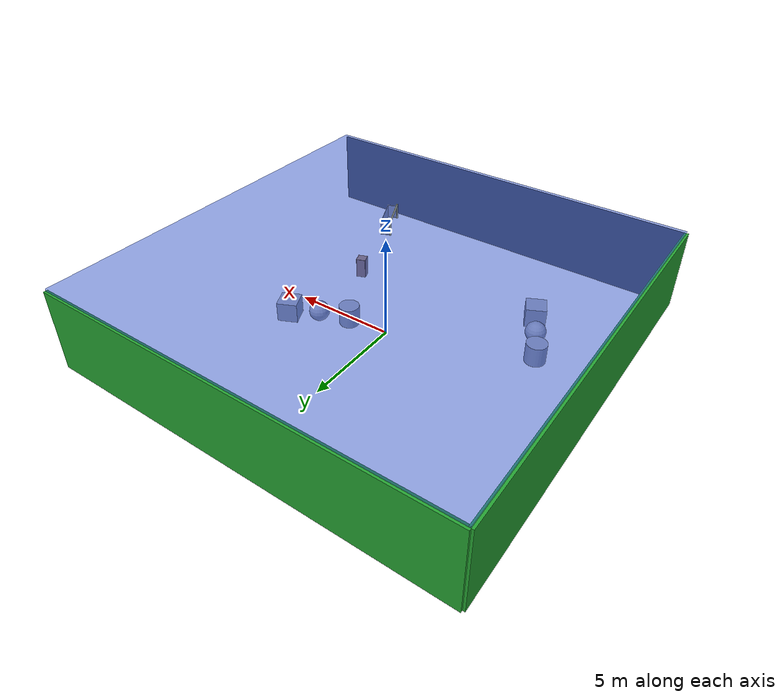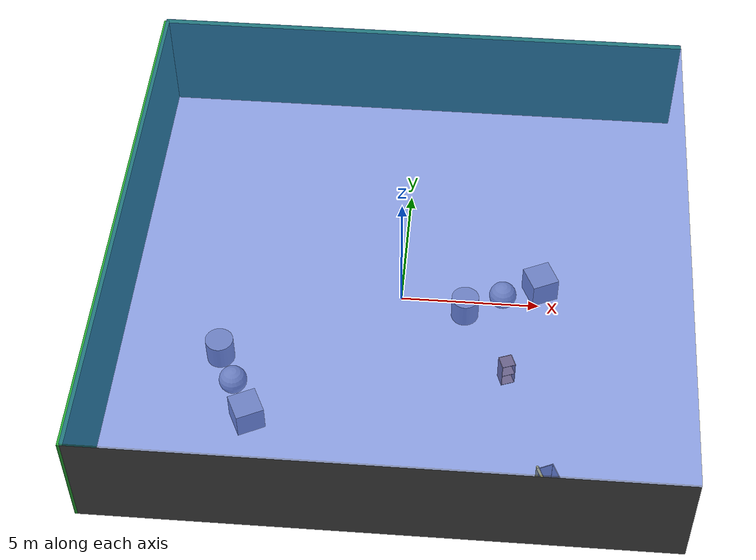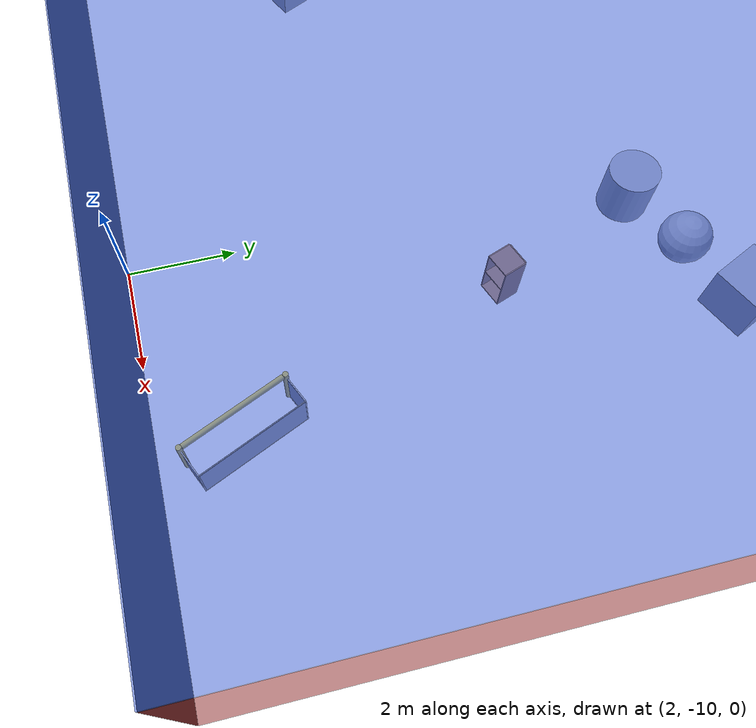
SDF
<sdf version="1.4">
 <world name="default">
  <physics type="ode">
   <max_step_size>0.001</max_step_size>
   <real_time_factor>1</real_time_factor>
   <real_time_update_rate>1000</real_time_update_rate>
   <gravity>0 0 -9.8</gravity>
  </physics>
  <scene><ambient>0.4 0.4 0.4 1</ambient><background>0.7 0.7 0.7 1</background><shadows>1</shadows></scene>
  <model name="Surrounding">
   <static>1</static>
   <link name="Ceiling">
    <collision name="Ceiling_Collision"><geometry><box><size>20 20 0.1</size></box></geometry></collision>
    <visual name="Ceiling_Visual">
     <geometry><box><size>20 20 0.1</size></box></geometry>
     <material>
      <script><uri>file://media/materials/scripts/gazebo.material</uri><name>Gazebo/BlueTransparent</name></script>
     </material>
    </visual>
    <pose>0 0 4.05 0 0 0</pose>
   </link>
   <link name="Wall_South">
    <collision name="Wall_South_Collision">
     <geometry><box><size>20 0 4</size></box></geometry>
     <pose>0 0 2 0 -0 0</pose>
    </collision>
    <visual name="Wall_South_Visual">
     <pose>0 0 2 0 -0 0</pose>
     <geometry><box><size>20 0 4</size></box></geometry>
     <material>
      <script><uri>file://media/materials/scripts/gazebo.material</uri><name>Gazebo/DarkGrey</name></script>
     </material>
    </visual>
    <velocity_decay><linear>0</linear><angular>0</angular></velocity_decay>
    <pose>0 -10 0 0 -0 0</pose>
   </link>
   <link name="Wall_East">
    <collision name="Wall_21_Collision">
     <geometry><box><size>20 0 4</size></box></geometry>
     <pose>0 0 2 0 -0 0</pose>
    </collision>
    <visual name="Wall_21_Visual">
     <pose>0 0 2 0 -0 0</pose>
     <geometry><box><size>20 0 4</size></box></geometry>
     <material>
      <script><uri>file://media/materials/scripts/gazebo.material</uri><name>Gazebo/RedTransparent</name></script>
     </material>
    </visual>
    <velocity_decay><linear>0</linear><angular>0</angular></velocity_decay>
    <pose>10 0 0 0 -0 1.5708</pose>
   </link>
   <link name="Wall_North">
    <collision name="Wall_22_Collision">
     <geometry><box><size>20 0.2 4</size></box></geometry>
     <pose>0 0 2 0 -0 0</pose>
    </collision>
    <visual name="Wall_22_Visual">
     <pose>0 0 2 0 -0 0</pose>
     <geometry><box><size>20 0.2 4</size></box></geometry>
     <material>
      <script><uri>file://media/materials/scripts/gazebo.material</uri><name>Gazebo/Green</name></script>
     </material>
    </visual>
    <velocity_decay><linear>0</linear><angular>0</angular></velocity_decay>
    <pose>0 10 0 0 -0 0</pose>
   </link>
   <link name="Wall_West">
    <collision name="Wall_23_Collision">
     <geometry><box><size>20 0.2 4</size></box></geometry>
     <pose>0 0 2 0 -0 0</pose>
    </collision>
    <visual name="Wall_23_Visual">
     <pose>0 0 2 0 -0 0</pose>
     <geometry><box><size>20 0.2 4</size></box></geometry>
     <material>
      <script><uri>file://media/materials/scripts/gazebo.material</uri><name>Gazebo/Green</name></script>
     </material>
    </visual>
    <velocity_decay><linear>0</linear><angular>0</angular></velocity_decay>
    <pose>-10 0 0 0 0 -1.5708</pose>
   </link>
   <link name="Ground_link">
    <collision name="collision">
     <pose>0 0 .05 0 -0 0</pose>
     <geometry><box><size>20 20 0.1</size></box></geometry>
    </collision>
    <visual name="visual">
     <pose>0 0 .05 0 -0 0</pose>
     <geometry><box><size>20 20 0.1</size></box></geometry>
     <material>
      <script><uri>file://media/materials/scripts/gazebo.material</uri><name>Gazebo/RedTransparent</name></script>
     </material>
    </visual>
   </link>
   <static>1</static>
  </model>
  <spherical_coordinates>
   <surface_model>EARTH_WGS84</surface_model>
   <latitude_deg>0</latitude_deg>
   <longitude_deg>0</longitude_deg>
   <elevation>0</elevation>
   <heading_deg>0</heading_deg>
  </spherical_coordinates>
  <light name="lightball_0" type="diffuse">
   <diffuse>0.8 0.8 0.8 1</diffuse>
   <specular>0.2 0.2 0.2 1</specular>
   <attenuation>
    <range>100</range>
    <constant>0.7</constant>
    <linear>0.01</linear>
    <quadratic>0.001</quadratic>
   </attenuation>
   <direction>-0.5 0.1 -0.9</direction>
   <pose>-3.10347327795 2.76650983973 3.27895108551 0 0 0</pose>
  </light>
  <light name="lightball_1" type="diffuse">
   <diffuse>0.8 0.8 0.8 1</diffuse>
   <specular>0.2 0.2 0.2 1</specular>
   <attenuation>
    <range>100</range>
    <constant>0.7</constant>
    <linear>0.01</linear>
    <quadratic>0.001</quadratic>
   </attenuation>
   <direction>-0.5 0.1 -0.9</direction>
   <pose>4.42525129269 -1.98116404055 3.84549390939 0 0 0</pose>
  </light>
  <light name="lightball_2" type="diffuse">
   <diffuse>0.8 0.8 0.8 1</diffuse>
   <specular>0.2 0.2 0.2 1</specular>
   <attenuation>
    <range>100</range>
    <constant>0.7</constant>
    <linear>0.01</linear>
    <quadratic>0.001</quadratic>
   </attenuation>
   <direction>-0.5 0.1 -0.9</direction>
   <pose>-1.08263502822 -5.50587422909 1.14300539423 0 0 0</pose>
  </light>
  <light name="lightball_3" type="diffuse">
   <diffuse>0.8 0.8 0.8 1</diffuse>
   <specular>0.2 0.2 0.2 1</specular>
   <attenuation>
    <range>100</range>
    <constant>0.7</constant>
    <linear>0.01</linear>
    <quadratic>0.001</quadratic>
   </attenuation>
   <direction>-0.5 0.1 -0.9</direction>
   <pose>1.71915640522 7.25481019983 1.47166536637 0 0 0</pose>
  </light>
  <light name="lightball_4" type="diffuse">
   <diffuse>0.8 0.8 0.8 1</diffuse>
   <specular>0.2 0.2 0.2 1</specular>
   <attenuation>
    <range>100</range>
    <constant>0.7</constant>
    <linear>0.01</linear>
    <quadratic>0.001</quadratic>
   </attenuation>
   <direction>-0.5 0.1 -0.9</direction>
   <pose>3.64144009284 -9.30930374953 2.34480760671 0 0 0</pose>
  </light>
  <light name="lightball_5" type="diffuse">
   <diffuse>0.8 0.8 0.8 1</diffuse>
   <specular>0.2 0.2 0.2 1</specular>
   <attenuation>
    <range>100</range>
    <constant>0.7</constant>
    <linear>0.01</linear>
    <quadratic>0.001</quadratic>
   </attenuation>
   <direction>-0.5 0.1 -0.9</direction>
   <pose>-6.54123422797 1.77660602973 0.913367110695 0 0 0</pose>
  </light>
  <light name="lightball_6" type="diffuse">
   <diffuse>0.8 0.8 0.8 1</diffuse>
   <specular>0.2 0.2 0.2 1</specular>
   <attenuation>
    <range>100</range>
    <constant>0.7</constant>
    <linear>0.01</linear>
    <quadratic>0.001</quadratic>
   </attenuation>
   <direction>-0.5 0.1 -0.9</direction>
   <pose>-1.86813725628 8.40391083828 1.04280490039 0 0 0</pose>
  </light>
  <light name="lightball_7" type="diffuse">
   <diffuse>0.8 0.8 0.8 1</diffuse>
   <specular>0.2 0.2 0.2 1</specular>
   <attenuation>
    <range>100</range>
    <constant>0.7</constant>
    <linear>0.01</linear>
    <quadratic>0.001</quadratic>
   </attenuation>
   <direction>-0.5 0.1 -0.9</direction>
   <pose>8.09868498987 -9.0247550964 3.20197140438 0 0 0</pose>
  </light>
  <include>
   <uri>model://textured_shapes</uri>
   <pose>-5.66833557901 -4.1425348158 0 0 0 0.455212149801</pose>
  </include>
  <include>
   <uri>model://robocup_3Dsim_goal</uri>
   <pose>5.52186312558 -8.54996765926 0 0 0 0.41759902326</pose>
  </include>
  <include><uri>model://cabinet</uri><pose>3.9305016929 -3.37708495535 0 0 0 1.92205981751</pose></include>
  <include>
   <uri>model://textured_shapes</uri>
   <pose>3.68756912178 0.43278859618 0 0 0 2.00428108189</pose>
  </include>
 </world>
</sdf>

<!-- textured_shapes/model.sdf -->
<sdf version="1.6">
  <model name="textured_shapes">
    <pose>0 0 0.5 0 0 0</pose>
    <link name="box">
      <pose>0 -1.5 0 0 0 0</pose>
      <collision name="collision">
        <geometry>
          <box>
            <size>1 1 1</size>
          </box>
        </geometry>
      </collision>
      <visual name="visual">
        <geometry>
          <box>
            <size>1 1 1</size>
          </box>
        </geometry>
        <material>
          <script>
            <uri>model://../model_source/models/textured_shapes/materials/scripts</uri>
            <uri>model://../model_source/models/textured_shapes/materials/textures</uri>
            <name>TexturedShape/Squares</name>
          </script>
        </material>
      </visual>
    </link>
    <link name="sphere">
      <collision name="collision">
        <geometry>
          <sphere>
            <radius>0.5</radius>
          </sphere>
        </geometry>
      </collision>
      <visual name="visual">
        <geometry>
          <sphere>
            <radius>0.5</radius>
          </sphere>
        </geometry>
        <material>
          <script>
            <uri>model://../model_source/models/textured_shapes/materials/scripts</uri>
            <uri>model://../model_source/models/textured_shapes/materials/textures</uri>
            <name>TexturedShape/Squares</name>
          </script>
        </material>
      </visual>
    </link>
    <link name="cylinder">
      <pose>0 1.5 0 0 0 0</pose>
      <collision name="collision">
        <geometry>
          <cylinder>
            <radius>0.5</radius>
            <length>1</length>
          </cylinder>
        </geometry>
      </collision>
      <visual name="visual">
        <geometry>
          <cylinder>
            <radius>0.5</radius>
            <length>1</length>
          </cylinder>
        </geometry>
        <material>
          <script>
            <uri>model://../model_source/models/textured_shapes/materials/scripts</uri>
            <uri>model://../model_source/models/textured_shapes/materials/textures</uri>
            <name>TexturedShape/Squares</name>
          </script>
        </material>
      </visual>
    </link>
  </model>
</sdf>

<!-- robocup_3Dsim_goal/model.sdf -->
<sdf version="1.5">
  <model name="robocup_3d_goal">
    <static>true</static>
    <link name="left_post">
      <pose>0 1.05 0.45 0 0 0</pose>
      <collision name="collision">
        <geometry>
          <cylinder>
            <radius>0.05</radius>
            <length>0.9</length>
          </cylinder>
        </geometry>
      </collision>
      <visual name="visual">
        <geometry>
          <cylinder>
            <radius>0.05</radius>
            <length>0.9</length>
          </cylinder>
        </geometry>
        <material>
          <script>
            <uri>file://media/materials/scripts/gazebo.material</uri>
            <name>Gazebo/ZincYellow</name>
          </script>
        </material>
      </visual>
    </link>
    <link name="left_support_horiz_lower">
      <pose>0.30 1.05 0.01 0 0 0</pose>
      <collision name="collision">
        <geometry>
          <box>
            <size>0.50 0.02 0.02</size>
          </box>
        </geometry>
      </collision>
      <visual name="visual">
        <geometry>
          <box>
            <size>0.50 0.02 0.02</size>
          </box>
        </geometry>
        <material>
          <script>
            <uri>file://media/materials/scripts/gazebo.material</uri>
            <name>Gazebo/White</name>
          </script>
        </material>
      </visual>
    </link>
    <link name="left_support_horiz_upper">
      <pose>0.30 1.05 0.79 0 0 0</pose>
      <collision name="collision">
        <geometry>
          <box>
            <size>0.50 0.02 0.02</size>
          </box>
        </geometry>
      </collision>
      <visual name="visual">
        <geometry>
          <box>
            <size>0.50 0.02 0.02</size>
          </box>
        </geometry>
        <material>
          <script>
            <uri>file://media/materials/scripts/gazebo.material</uri>
            <name>Gazebo/White</name>
          </script>
        </material>
      </visual>
    </link>
    <link name="left_support_vertical">
      <pose>0.56 1.05 0.4 0 1.5708 0</pose>
      <collision name="collision">
        <geometry>
          <box>
            <size>0.80 0.02 0.02</size>
          </box>
        </geometry>
      </collision>
      <visual name="visual">
        <geometry>
          <box>
            <size>0.80 0.02 0.02</size>
          </box>
        </geometry>
        <material>
          <script>
            <uri>file://media/materials/scripts/gazebo.material</uri>
            <name>Gazebo/White</name>
          </script>
        </material>
      </visual>
    </link>
    <link name="right_support_horiz_lower">
      <pose>0.30 -1.05 0.01 0 0 0</pose>
      <collision name="collision">
        <geometry>
          <box>
            <size>0.50 0.02 0.02</size>
          </box>
        </geometry>
      </collision>
      <visual name="visual">
        <geometry>
          <box>
            <size>0.50 0.02 0.02</size>
          </box>
        </geometry>
        <material>
          <script>
            <uri>file://media/materials/scripts/gazebo.material</uri>
            <name>Gazebo/White</name>
          </script>
        </material>
      </visual>
    </link>
    <link name="right_support_horiz_upper">
      <pose>0.30 -1.05 0.79 0 0 0</pose>
      <collision name="collision">
        <geometry>
          <box>
            <size>0.50 0.02 0.02</size>
          </box>
        </geometry>
      </collision>
      <visual name="visual">
        <geometry>
          <box>
            <size>0.50 0.02 0.02</size>
          </box>
        </geometry>
        <material>
          <script>
            <uri>file://media/materials/scripts/gazebo.material</uri>
            <name>Gazebo/White</name>
          </script>
        </material>
      </visual>
    </link>
    <link name="right_support_vertical">
      <pose>0.56 -1.05 0.4 0 1.5708 0</pose>
      <collision name="collision">
        <geometry>
          <box>
            <size>0.80 0.02 0.02</size>
          </box>
        </geometry>
      </collision>
      <visual name="visual">
        <geometry>
          <box>
            <size>0.80 0.02 0.02</size>
          </box>
        </geometry>
        <material>
          <script>
            <uri>file://media/materials/scripts/gazebo.material</uri>
            <name>Gazebo/White</name>
          </script>
        </material>
      </visual>
    </link>
    <link name="center_support_horiz_lower">
      <pose>0.56 0 0.01 0 1.5708 0</pose>
      <collision name="collision">
        <geometry>
          <box>
            <size>0.02 2.08 0.02</size>
          </box>
        </geometry>
      </collision>
      <visual name="visual">
        <geometry>
          <box>
            <size>0.02 2.08 0.02</size>
          </box>
        </geometry>
        <material>
          <script>
            <uri>file://media/materials/scripts/gazebo.material</uri>
            <name>Gazebo/White</name>
          </script>
        </material>
      </visual>
    </link>
    <link name="center_support_horiz_upper">
      <pose>0.56 0 0.79 0 1.5708 0</pose>
      <collision name="collision">
        <geometry>
          <box>
            <size>0.02 2.08 0.02</size>
          </box>
        </geometry>
      </collision>
      <visual name="visual">
        <geometry>
          <box>
            <size>0.02 2.08 0.02</size>
          </box>
        </geometry>
        <material>
          <script>
            <uri>file://media/materials/scripts/gazebo.material</uri>
            <name>Gazebo/White</name>
          </script>
        </material>
      </visual>
    </link>
    <link name="right_post">
      <pose>0 -1.05 0.45 0 0 0</pose>
      <collision name="collision">
        <geometry>
          <cylinder>
            <radius>0.05</radius>
            <length>0.9</length>
          </cylinder>
        </geometry>
      </collision>
      <visual name="visual">
        <geometry>
          <cylinder>
            <radius>0.05</radius>
            <length>0.9</length>
          </cylinder>
        </geometry>
        <material>
          <script>
            <uri>file://media/materials/scripts/gazebo.material</uri>
            <name>Gazebo/ZincYellow</name>
          </script>
        </material>
      </visual>
    </link>
    <link name="crossbar">
      <pose>0 0 0.85 1.57 1.57 0</pose>
      <collision name="collision">
        <geometry>
          <cylinder>
            <radius>0.05</radius>
            <length>2.0</length>
          </cylinder>
        </geometry>
      </collision>
      <visual name="visual">
        <geometry>
          <cylinder>
            <radius>0.05</radius>
            <length>2.0</length>
          </cylinder>
        </geometry>
        <material>
          <script>
            <uri>file://media/materials/scripts/gazebo.material</uri>
            <name>Gazebo/ZincYellow</name>
          </script>
        </material>
      </visual>
    </link>
    <link name="center_net">
      <pose>0.56 0 0.40 0 0 0</pose>
      <collision name="collision">
        <geometry>
          <box>
            <size>0.01 2.1 0.80</size>
          </box>
        </geometry>
      </collision>
      <visual name="visual">
        <geometry>
          <box>
            <size>0.01 2.1 0.80</size>
          </box>
        </geometry>
        <material>
          <script>
            <uri>model://../model_source/models/robocup09_spl_field/materials/scripts/</uri>
            <uri>model://../model_source/models/robocup09_spl_field/materials/textures/</uri>
            <name>RoboCup/Net</name>
          </script>
        </material>
      </visual>
    </link>
    <link name="left_net">
      <pose>0.30 1.05 0.40 0 0 0</pose>
      <collision name="collision">
        <geometry>
          <box>
            <size>0.50 0.01 0.76</size>
          </box>
        </geometry>
      </collision>
      <visual name="visual">
        <geometry>
          <box>
            <size>0.50 0.01 0.76</size>
          </box>
        </geometry>
        <material>
          <script>
            <uri>model://../model_source/models/robocup09_spl_field/materials/scripts/</uri>
            <uri>model://../model_source/models/robocup09_spl_field/materials/textures/</uri>
            <name>RoboCup/Net</name>
          </script>
        </material>
      </visual>
    </link>
    <link name="right_net">
      <pose>0.30 -1.05 0.40 0 0 0</pose>
      <collision name="collision">
        <geometry>
          <box>
            <size>0.50 0.01 0.76</size>
          </box>
        </geometry>
      </collision>
      <visual name="visual">
        <geometry>
          <box>
            <size>0.50 0.01 0.76</size>
          </box>
        </geometry>
        <material>
          <script>
            <uri>model://../model_source/models/robocup09_spl_field/materials/scripts/</uri>
            <uri>model://../model_source/models/robocup09_spl_field/materials/textures/</uri>
            <name>RoboCup/Net</name>
          </script>
        </material>
      </visual>
    </link>
  </model>
</sdf>

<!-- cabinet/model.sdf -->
<sdf version="1.5">
  <model name="cabinet">
    <static>true</static>
    <link name="cabinet_bottom_plate">
      <inertial>
        <pose>0 0 -1 0 0 0</pose>
        <inertia>
          <ixx>2.050000</ixx>
          <ixy>0</ixy>
          <ixz>0</ixz>
          <iyy>2.050000</iyy>
          <iyz>0</iyz>
          <izz>2.050000</izz>
        </inertia>
        <mass>25.000000</mass>
      </inertial>
      <collision name="cabinet_bottom_plate_geom">
        <pose>0 0 0.010000 0 0 0</pose>
        <geometry>
          <box>
            <size>0.450000 0.450000 0.020000</size>
          </box>
        </geometry>
      </collision>
      <visual name="cabinet_bottom_plate_geom_visual">
        <pose>0 0 0.010000 0 0 0</pose>
        <geometry>
          <box>
            <size>0.450000 0.450000 0.020000</size>
          </box>
        </geometry>
        <material>
          <script>
            <uri>model://media/materials/scripts/gazebo.material</uri>
            <name>Gazebo/Wood</name>
          </script>
        </material>
      </visual>
      <collision name="cabinet_bottom_plate_geom_cabinet_back_plate">
        <pose>0.235000 0 0.510000 0 0 0</pose>
        <geometry>
          <box>
            <size>0.020000 0.450000 1.020000</size>
          </box>
        </geometry>
      </collision>
      <visual name="cabinet_bottom_plate_geom_cabinet_back_plate_visual">
        <pose>0.235000 0 0.510000 0 0 0</pose>
        <geometry>
          <box>
            <size>0.020000 0.450000 1.020000</size>
          </box>
        </geometry>
        <material>
          <script>
            <uri>model://media/materials/scripts/gazebo.material</uri>
            <name>Gazebo/Wood</name>
          </script>
        </material>
      </visual>
      <collision name="cabinet_bottom_plate_geom_cabinet_left_plate">
        <pose>0 0.235000 0.510000 0 0 0</pose>
        <geometry>
          <box>
            <size>0.450000 0.020000 1.020000</size>
          </box>
        </geometry>
      </collision>
      <visual name="cabinet_bottom_plate_geom_cabinet_left_plate_visual">
        <pose>0 0.235000 0.510000 0 0 0</pose>
        <geometry>
          <box>
            <size>0.450000 0.020000 1.020000</size>
          </box>
        </geometry>
        <material>
          <script>
            <uri>model://media/materials/scripts/gazebo.material</uri>
            <name>Gazebo/Wood</name>
          </script>
        </material>
      </visual>
      <collision name="cabinet_bottom_plate_geom_cabinet_middle_plate">
        <pose>0 0 0.510000 0 0 0</pose>
        <geometry>
          <box>
            <size>0.450000 0.450000 0.020000</size>
          </box>
        </geometry>
      </collision>
      <visual name="cabinet_bottom_plate_geom_cabinet_middle_plate_visual">
        <pose>0 0 0.510000 0 0 0</pose>
        <geometry>
          <box>
            <size>0.450000 0.450000 0.020000</size>
          </box>
        </geometry>
        <material>
          <script>
            <uri>model://media/materials/scripts/gazebo.material</uri>
            <name>Gazebo/Wood</name>
          </script>
        </material>
      </visual>
      <collision name="cabinet_bottom_plate_geom_cabinet_right_plate">
        <pose>0 -0.235000 0.510000 0 0 0</pose>
        <geometry>
          <box>
            <size>0.450000 0.020000 1.020000</size>
          </box>
        </geometry>
      </collision>
      <visual name="cabinet_bottom_plate_geom_cabinet_right_plate_visual">
        <pose>0 -0.235000 0.510000 0 0 0</pose>
        <geometry>
          <box>
            <size>0.450000 0.020000 1.020000</size>
          </box>
        </geometry>
        <material>
          <script>
            <uri>model://media/materials/scripts/gazebo.material</uri>
            <name>Gazebo/Wood</name>
          </script>
        </material>
      </visual>
      <collision name="cabinet_bottom_plate_geom_cabinet_top_plate">
        <pose>0 0 1.010000 0 0 0</pose>
        <geometry>
          <box>
            <size>0.450000 0.450000 0.020000</size>
          </box>
        </geometry>
      </collision>
      <visual name="cabinet_bottom_plate_geom_cabinet_top_plate_visual">
        <pose>0 0 1.010000 0 0 0</pose>
        <geometry>
          <box>
            <size>0.450000 0.450000 0.020000</size>
          </box>
        </geometry>
        <material>
          <script>
            <uri>model://media/materials/scripts/gazebo.material</uri>
            <name>Gazebo/Wood</name>
          </script>
        </material>
      </visual>
    </link>
  </model>
</sdf>
